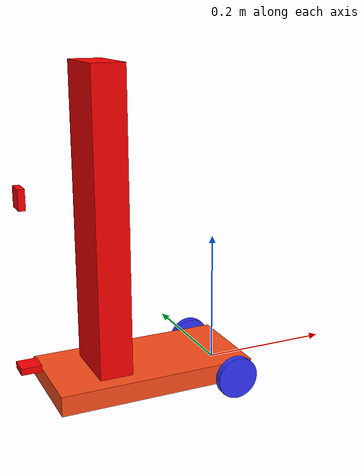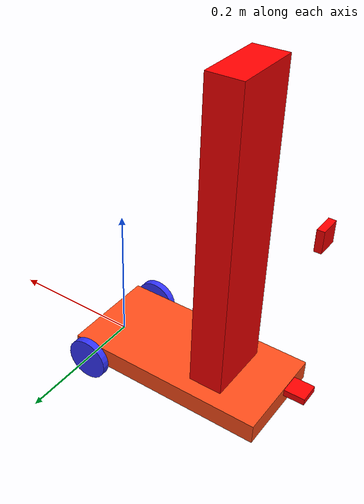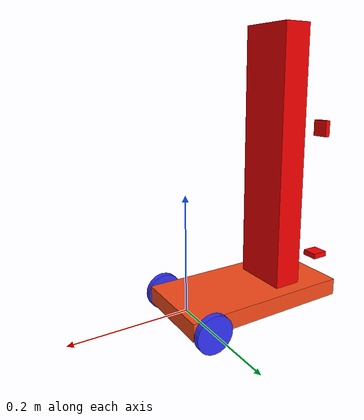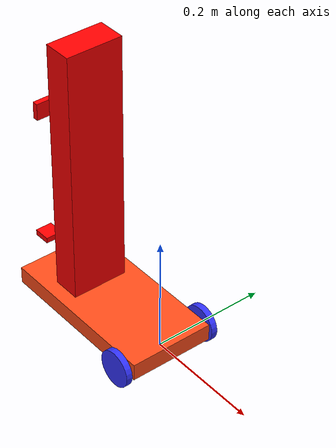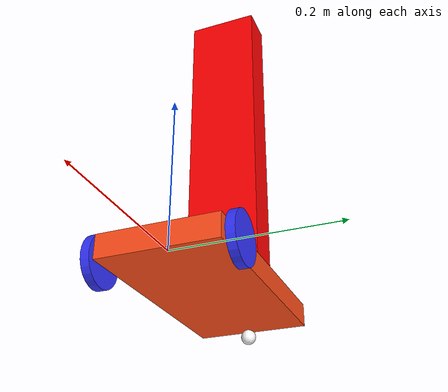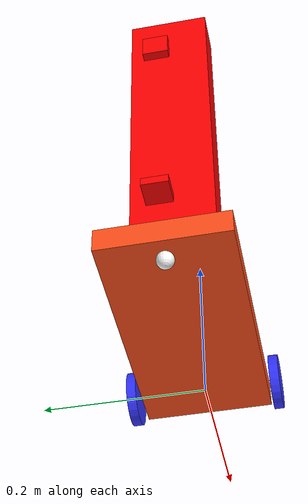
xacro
<?xml version="1.0"?>
<robot xmlns:xacro="http://www.ros.org/wiki/xacro"  name="robot">

    <xacro:include filename="robot_core.xacro" />

    <xacro:include filename="ros2_control.xacro" />

    <xacro:include filename="camera.xacro" />

    <xacro:include filename="camera_on_rod.xacro" />

</robot>

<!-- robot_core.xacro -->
<robot xmlns:xacro="http://www.ros.org/wiki/xacro" >

    <xacro:include filename="inertial_macros.xacro"/>

    <xacro:property name="chassis_length" value="0.3"/>
    <xacro:property name="chassis_width" value="0.150"/>
    <xacro:property name="chassis_height" value="0.03"/>
    <xacro:property name="chassis_mass" value="1.0"/>
    <xacro:property name="wheel_radius" value="0.032"/>
    <xacro:property name="wheel_thickness" value="0.011"/>
    <xacro:property name="wheel_mass" value="0.05"/>
    <xacro:property name="wheel_offset_x" value="0.270"/>
    <xacro:property name="wheel_offset_y" value="0.085"/>
    <xacro:property name="wheel_offset_z" value="0.01"/>
    <xacro:property name="caster_wheel_radius" value="0.01"/>
    <xacro:property name="caster_wheel_mass" value="0.01"/>
    <xacro:property name="caster_wheel_offset_x" value="0.017"/>
    <xacro:property name="caster_wheel_offset_z" value="${wheel_offset_z - wheel_radius + caster_wheel_radius}"/>
    <xacro:property name="lift_length" value="0.05"/>
    <xacro:property name="lift_width" value="0.1"/>
    <xacro:property name="lift_height" value="0.45"/>
    <!-- ${lift_length} ${lift_width} ${lift_height} -->

    <material name="white">
        <color rgba="1 1 1 1" />
    </material>

    <material name="orange">
        <color rgba="1 0.3 0.1 1"/>
    </material>

    <material name="blue">
        <color rgba="0.2 0.2 1 1"/>
    </material>

    <material name="black">
        <color rgba="0 0 0 1"/>
    </material>

    <material name="red">
        <color rgba="1 0 0 1"/>
    </material>

    <!-- BASE LINK -->

    <link name="base_link">

    </link>

    <!-- BASE_FOOTPRINT LINK -->

    <joint name="base_footprint_joint" type="fixed">
        <parent link="base_link"/>
        <child link="base_footprint"/>
        <origin xyz="0 0 0" rpy="0 0 0"/>
    </joint>

    <link name="base_footprint">
    </link>

    <!-- CHASSIS LINK -->

    <joint name="chassis_joint" type="fixed">
        <parent link="base_link"/>
        <child link="chassis"/>
        <origin xyz="${-wheel_offset_x} 0 ${-wheel_offset_z}"/>
    </joint>

    <link name="chassis">
        <visual>
            <origin xyz="${chassis_length/2} 0 ${chassis_height/2}"/>
            <geometry>
                <box size="${chassis_length} ${chassis_width} ${chassis_height}"/>
            </geometry>
            <material name="orange"/>
        </visual>
        <collision>
            <origin xyz="${chassis_length/2} 0 ${chassis_height/2}"/>
            <geometry>
                <box size="${chassis_length} ${chassis_width} ${chassis_height}"/>
            </geometry>
        </collision>
        <xacro:inertial_box mass="0.5" x="${chassis_length}" y="${chassis_width}" z="${chassis_height}">
            <origin xyz="${chassis_length/2} 0 ${chassis_height/2}" rpy="0 0 0"/>
        </xacro:inertial_box>
    </link>

    <gazebo reference="chassis">
        <material>Gazebo/Orange</material>
    </gazebo>

    <!-- LIFT LINK -->

    <joint name="lift_joint" type="fixed">
        <parent link="base_link"/>
        <child link="lift"/>
        <origin xyz="${-wheel_offset_x} 0 ${-wheel_offset_z}"/>
    </joint>

    <link name="lift">
        <visual>
            <origin xyz="${chassis_length/3.3} 0 ${chassis_height+lift_height/2}"/>
            <geometry>
                <box size="${lift_length} ${lift_width} ${lift_height}"/>
            </geometry>
            <material name="red"/>
        </visual>
        <collision>
            <origin xyz="${chassis_length/3.3} 0 ${chassis_height+lift_height/2}"/>
            <geometry>
                <box size="${lift_length} ${lift_width} ${lift_height}"/>
            </geometry>
        </collision>
        <xacro:inertial_box mass="0.5" x="${lift_length}" y="${lift_width}" z="${lift_height}">
            <origin xyz="${chassis_length/3} 0 ${chassis_height}" rpy="0 0 0"/>
        </xacro:inertial_box>
    </link>

    <gazebo reference="chassis">
        <material>Gazebo/Orange</material>
    </gazebo>

    <!-- LEFT WHEEL LINK -->

    <joint name="left_wheel_joint" type="continuous">
        <parent link="base_link"/>
        <child link="left_wheel"/>
        <origin xyz="0 ${wheel_offset_y} 0" rpy="-${pi/2} 0 0" />
        <axis xyz="0 0 1"/>
    </joint>

    <link name="left_wheel">
        <visual>
            <geometry>
                <cylinder radius="${wheel_radius}" length="${wheel_thickness}"/>
            </geometry>
            <material name="blue"/>
        </visual>
        <collision>
            <geometry>
                <sphere radius="${wheel_radius}"/>
            </geometry>
        </collision>
        <xacro:inertial_cylinder mass="${wheel_mass}" length="${wheel_thickness}" radius="${wheel_radius}">
            <origin xyz="0 0 0" rpy="0 0 0"/>
        </xacro:inertial_cylinder>
    </link>

    <gazebo reference="left_wheel">
        <material>Gazebo/Blue</material>
        <mu1 value = "1.1"/>
    </gazebo>

    <!-- RIGHT WHEEL LINK -->

    <joint name="right_wheel_joint" type="continuous">
        <parent link="base_link"/>
        <child link="right_wheel"/>
        <origin xyz="0 ${-wheel_offset_y} 0" rpy="${pi/2} 0 0" />
        <axis xyz="0 0 -1"/>
    </joint>

    <link name="right_wheel">
        <visual>
            <geometry>
                <cylinder radius="${wheel_radius}" length="${wheel_thickness}"/>
            </geometry>
            <material name="blue"/>
        </visual>
        <collision>
            <geometry>
                <sphere radius="${wheel_radius}"/>
            </geometry>
        </collision>
        <xacro:inertial_cylinder mass="${wheel_mass}" length="${wheel_thickness}" radius="${wheel_radius}">
            <origin xyz="0 0 0" rpy="0 0 0"/>
        </xacro:inertial_cylinder>
    </link>

    <gazebo reference="right_wheel">
        <material>Gazebo/Blue</material>
        <mu1 value = "1.1"/>
    </gazebo>

    <!-- CASTER WHEEL LINK -->

    <joint name="caster_wheel_joint" type="fixed">
        <parent link="chassis"/>
        <child link="caster_wheel"/>
        <origin xyz="${caster_wheel_offset_x} 0 ${caster_wheel_offset_z}"/>
    </joint>

    <link name="caster_wheel">
        <visual>
            <geometry>
                <sphere radius="${caster_wheel_radius}"/>
            </geometry>
            <material name="white"/>
        </visual>
        <collision>
            <geometry>
                <sphere radius="${caster_wheel_radius}"/>
            </geometry>
        </collision>
        <xacro:inertial_sphere mass="${caster_wheel_mass}" radius="${caster_wheel_radius}">
            <origin xyz="0 0 0" rpy="0 0 0"/>
        </xacro:inertial_sphere>
    </link>

    <gazebo reference="caster_wheel">
        <material>Gazebo/White</material>
        <mu1 value="0.001"/>
        <mu2 value="0.001"/>
    </gazebo>

</robot>

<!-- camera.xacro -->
<robot xmlns:xacro="http://www.ros.org/wiki/xacro" >

    <joint name="camera_joint" type="fixed">
        <parent link="chassis"/>
        <child link="camera_link"/>
        <origin xyz="-0.025 0 0.05" rpy="${pi} ${pi/2} 0"/>
    </joint>

    <link name="camera_link">
        <visual>
            <geometry>
                <box size="0.010 0.03 0.03"/>
            </geometry>
            <material name="red"/>
        </visual>
    </link>

    <joint name="camera_optical_joint" type="fixed">
        <parent link="camera_link"/>
        <child link="camera_link_optical"/>
        <origin xyz="0 0 0" rpy="${-pi/2} 0 ${-pi/2}"/>
    </joint>

    <link name="camera_link_optical"></link>

    <gazebo reference="camera_link">
        <material>Gazebo/Red</material>

        <sensor name="camera" type="camera">
            <pose> 0 0 0 0 0 0 </pose>
            <visualize>true</visualize>
            <update_rate>10</update_rate>
            <camera>
                <horizontal_fov>1.4</horizontal_fov>
                <image>
                    <format>R8G8B8</format>
                    <width>640</width>
                    <height>480</height>
                </image>
                <clip>
                    <near>0.05</near>
                    <far>8.0</far>
                </clip>
            </camera>
            <plugin name="camera_controller" filename="libgazebo_ros_camera.so">
                <frame_name>camera_link_optical</frame_name>
            </plugin>
        </sensor>
    </gazebo>

</robot>

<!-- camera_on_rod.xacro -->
<robot xmlns:xacro="http://www.ros.org/wiki/xacro" >

    <joint name="camera_on_rod_joint" type="fixed">
        <parent link="lift"/>
        <child link="camera_on_rod_link"/>
        <origin xyz="-0.025 0 0.30" rpy="${pi} ${-pi} 0"/>
    </joint>

    <link name="camera_on_rod_link">
        <visual>
            <geometry>
                <box size="0.010 0.03 0.03"/>
            </geometry>
            <material name="red"/>
        </visual>
    </link>

    <joint name="camera_on_rod_optical_joint" type="fixed">
        <parent link="camera_on_rod_link"/>
        <child link="camera_on_rod_link_optical"/>
        <origin xyz="0 0 0" rpy="${-pi/2} 0 ${-pi/2}"/>
    </joint>

    <link name="camera_on_rod_link_optical"></link>

    <gazebo reference="camera_on_rod_link">
        <material>Gazebo/Red</material>

        <sensor name="camera_on_rod" type="camera">
            <pose> 0 0 0 0 0 0 </pose>
            <visualize>true</visualize>
            <update_rate>10</update_rate>
            <camera>
                <horizontal_fov>1.4</horizontal_fov>
                <image>
                    <format>R8G8B8</format>
                    <width>640</width>
                    <height>480</height>
                </image>
                <clip>
                    <near>0.05</near>
                    <far>8.0</far>
                </clip>
            </camera>
            <plugin name="camera_controller1" filename="libgazebo_ros_camera.so">
                <frameName>camera_on_rod_link_optical</frameName>
            </plugin>
        </sensor>
    </gazebo>

</robot>
